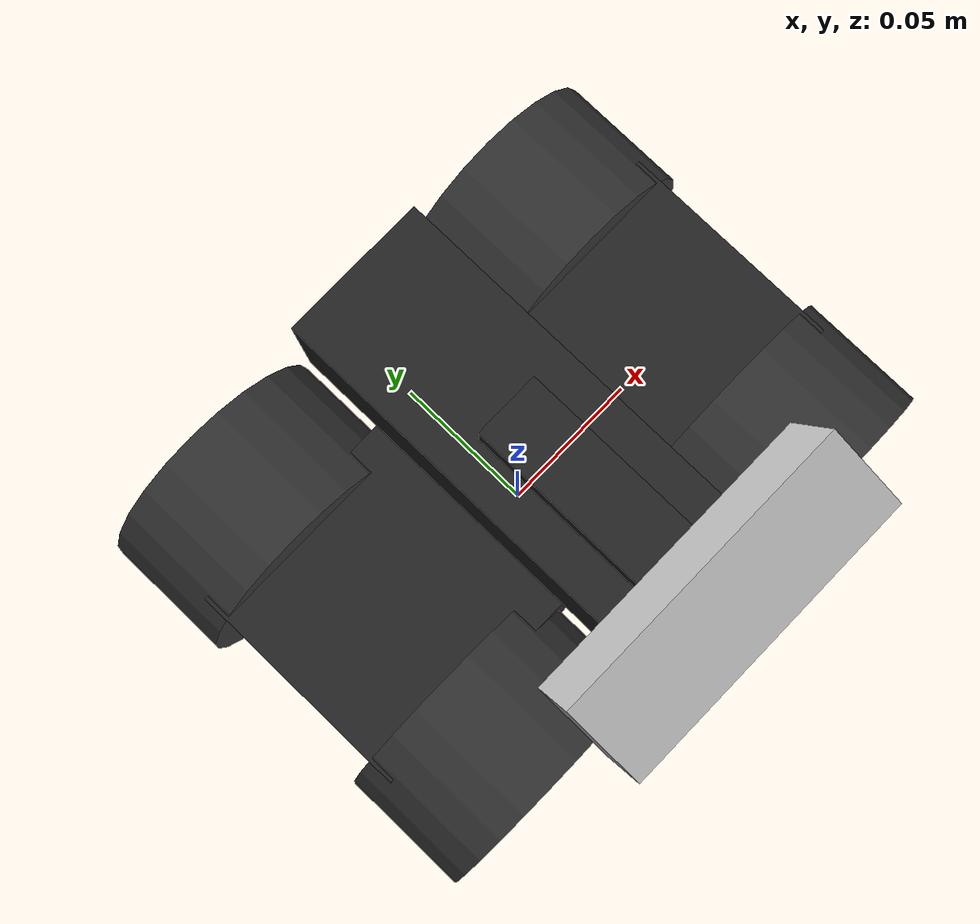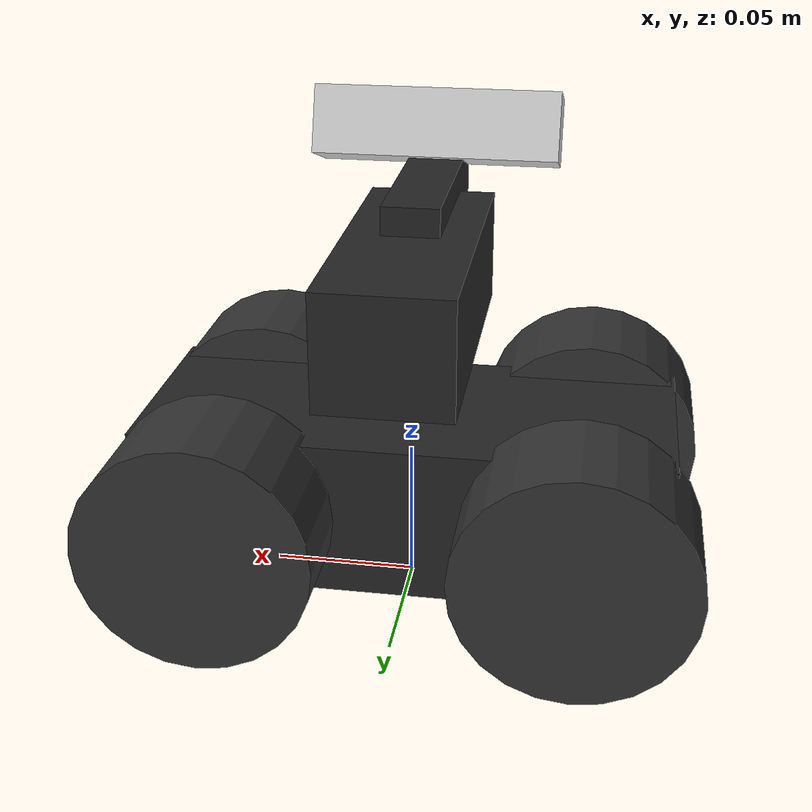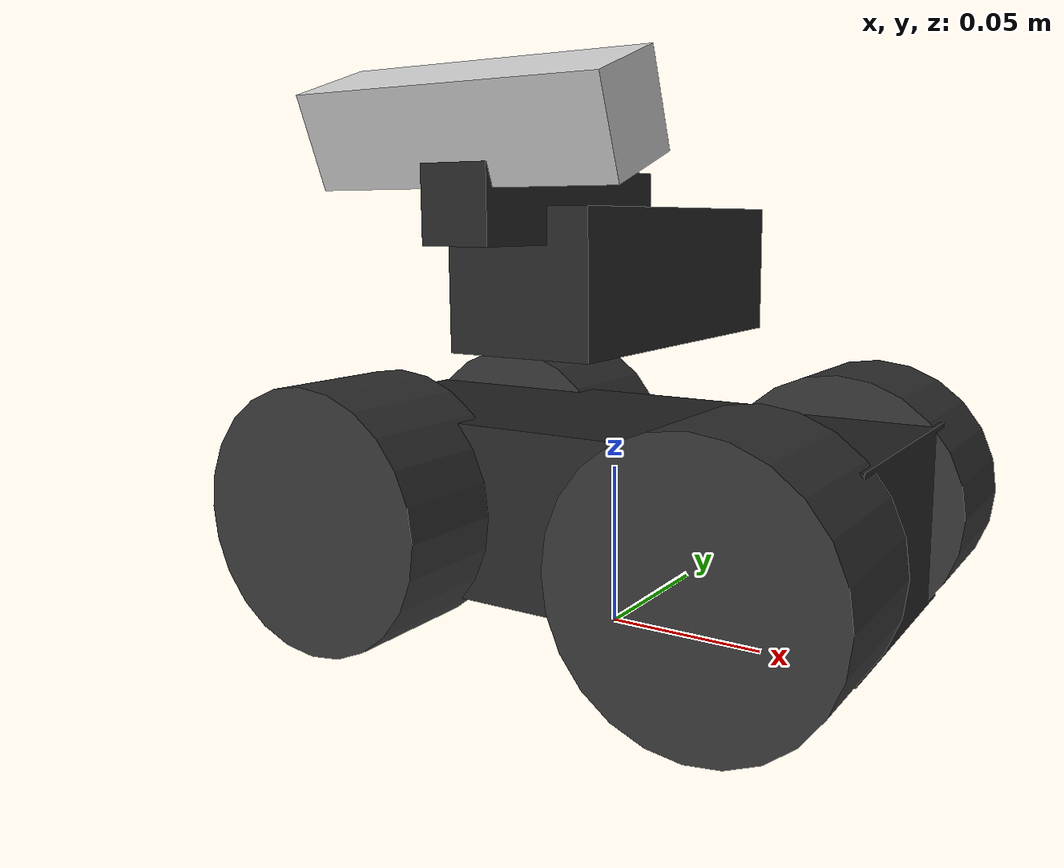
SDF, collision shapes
<?xml version="1.0"?>
<sdf version="1.7">
  <model name="wave_rover">
    <!-- Base Link -->
    <link name="base_link">
      <pose>0 0 0 0 0 0</pose>
      <inertial>
        <mass>5.0</mass>
        <inertia>
          <ixx>0.02</ixx>
          <ixy>0.0</ixy>
          <ixz>0.0</ixz>
          <iyy>0.02</iyy>
          <iyz>0.0</iyz>
          <izz>0.02</izz>
        </inertia>
      </inertial>
      <visual name="base_visual">
        <pose>0 0 0.06 0 0 0</pose>
        <geometry>
          <mesh>
            <uri>model://wave_rover_description/meshes/roverbody.stl</uri>
            <scale>0.001 0.001 0.001</scale>
          </mesh>
        </geometry>
        <material>
          <ambient>0.15 0.15 0.15 1.0</ambient>
          <diffuse>0.15 0.15 0.15 1.0</diffuse>
          <specular>0.1 0.1 0.1 1.0</specular>
        </material>
      </visual>
      <collision name="base_collision">
        <pose>0 0 0.04 0 0 0</pose>
        <geometry>
          <box>
            <size>0.1828 0.0753 0.0542</size>
          </box>
        </geometry>
        <surface>
          <friction>
            <ode>
              <mu>1</mu>
              <mu2>1</mu2>
            </ode>
          </friction>
          <contact>
            <ode>
              <soft_cfm>0</soft_cfm>
              <soft_erp>0.2</soft_erp>
              <kp>1e+13</kp>
              <kd>1</kd>
            </ode>
          </contact>
        </surface>
      </collision>
    </link>

    <!-- Bracket Stand Link -->
    <link name="bracket_stand_link">
      <pose relative_to="base_link">0.0 0.0042 0.11 0 0 0</pose>
      <inertial>
        <mass>0.1</mass>
        <inertia>
          <ixx>1e-5</ixx>
          <ixy>0.0</ixy>
          <ixz>0.0</ixz>
          <iyy>1e-5</iyy>
          <iyz>0.0</iyz>
          <izz>1e-5</izz>
        </inertia>
      </inertial>
      <visual name="bracket_stand_visual">
        <geometry>
          <box>
            <size>0.045 0.11 0.04</size>
          </box>
        </geometry>
        <material>
          <diffuse>0.15 0.15 0.15 1.0</diffuse>
          <specular>0.1 0.1 0.1 1.0</specular>
        </material>
      </visual>
      <collision name="bracket_stand_collision">
        <geometry>
          <box>
            <size>0.045 0.11 0.04</size>
          </box>
        </geometry>
      </collision>
    </link>

    <!-- Bracket Stand Joint -->
    <joint name="bracket_stand_mount" type="fixed">
      <parent>base_link</parent>
      <child>bracket_stand_link</child>
    </joint>

    <!-- Camera Bracket Link -->
    <link name="camera_bracket_link">
      <pose relative_to="bracket_stand_link">0.0 -0.04 0.02 0 0 0</pose>
      <inertial>
        <mass>0.05</mass>
        <inertia>
          <ixx>1e-6</ixx>
          <ixy>0.0</ixy>
          <ixz>0.0</ixz>
          <iyy>1e-6</iyy>
          <iyz>0.0</iyz>
          <izz>1e-6</izz>
        </inertia>
      </inertial>
      <visual name="camera_bracket_visual">
        <geometry>
          <mesh>
            <uri>model://wave_rover_description/meshes/realsense_bracket.stl</uri>
            <scale>0.001 0.001 0.001</scale>
          </mesh>
        </geometry>
        <material>
          <diffuse>0.15 0.15 0.15 1.0</diffuse>
          <specular>0.1 0.1 0.1 1.0</specular>
        </material>
      </visual>
      <collision name="camera_bracket_collision">
        <geometry>
          <box>
            <size>0.02 0.08 0.02</size>
          </box>
        </geometry>
      </collision>
    </link>

    <!-- Camera Bracket Joint -->
    <joint name="bracket_mount" type="fixed">
      <parent>bracket_stand_link</parent>
      <child>camera_bracket_link</child>
    </joint>

    <!-- Camera Link -->
    <link name="camera_link">
      <pose relative_to="camera_bracket_link">0.0 -0.03 0.02 0.349 0 0</pose>
      <inertial>
        <mass>0.0615752</mass>
        <inertia>
          <ixx>9.108e-05</ixx>
          <ixy>0</ixy>
          <ixz>0</ixz>
          <iyy>2.51e-06</iyy>
          <iyz>0</iyz>
          <izz>8.931e-05</izz>
        </inertia>
      </inertial>
      <collision name="camera_link_collision">
        <geometry>
          <box>
            <size>0.09 0.025 0.025</size>
          </box>
        </geometry>
      </collision>
      <visual name="camera_visual">
        <geometry>
          <mesh>
            <uri>model://wave_rover_description/models/intel_realsense_d435/meshes/realsense.dae</uri>
          </mesh>
        </geometry>
        <material>
          <diffuse>0.8 0.8 0.8 1.0</diffuse>
          <specular>0.2 0.2 0.2 1.0</specular>
        </material>
      </visual>

      <!-- Camera Sensor -->
      <sensor name="camera" type="camera">
        <update_rate>30</update_rate>
        <camera name="head">
          <horizontal_fov>1.0472</horizontal_fov>
          <image>
            <width>640</width>
            <height>480</height>
            <format>R8G8B8</format>
          </image>
          <clip>
            <near>0.02</near>
            <far>300</far>
          </clip>
          <noise>
            <type>gaussian</type>
            <mean>0.0</mean>
            <stddev>0.007</stddev>
          </noise>
        </camera>
        <plugin name="camera_controller" filename="libgazebo_ros_camera.so">
          <alwaysOn>true</alwaysOn>
          <updateRate>0.0</updateRate>
          <cameraName>wave_rover/camera</cameraName>
          <imageTopicName>image_raw</imageTopicName>
          <cameraInfoTopicName>camera_info</cameraInfoTopicName>
          <frameName>camera_link</frameName>
          <hackBaseline>0.07</hackBaseline>
          <distortionK1>0.0</distortionK1>
          <distortionK2>0.0</distortionK2>
          <distortionK3>0.0</distortionK3>
          <distortionT1>0.0</distortionT1>
          <distortionT2>0.0</distortionT2>
        </plugin>
      </sensor>
    </link>

    <!-- Camera Mount Joint -->
    <joint name="camera_mount" type="fixed">
      <parent>camera_bracket_link</parent>
      <child>camera_link</child>
    </joint>

    <!-- Front Left Wheel -->
    <link name="front_left_wheel">
      <pose>-0.061 -0.050 0.04 0 0 0</pose>
      <inertial>
        <mass>0.451</mass>
        <inertia>
          <ixx>0.000395</ixx>
          <ixy>0.0</ixy>
          <ixz>0.0</ixz>
          <iyy>0.000395</iyy>
          <iyz>0.0</iyz>
          <izz>0.000361</izz>
        </inertia>
      </inertial>
      <collision name="front_left_wheel_collision">
        <pose>0 0 0 1.5708 0 0</pose>
        <geometry>
          <cylinder>
            <length>0.042</length>
            <radius>0.04</radius>
          </cylinder>
        </geometry>
        <surface>
          <friction>
            <ode>
              <mu>1</mu>
              <mu2>1</mu2>
            </ode>
          </friction>
          <contact>
            <ode>
              <soft_cfm>0</soft_cfm>
              <soft_erp>0.2</soft_erp>
              <kp>1e+13</kp>
              <kd>1</kd>
            </ode>
          </contact>
        </surface>
      </collision>
      <visual name="front_left_wheel_visual">
        <pose>0 0 0 1.570795 0 0</pose>
        <geometry>
          <mesh>
            <uri>model://wave_rover_description/meshes/leftside_wheel.stl</uri>
            <scale>0.001 0.001 0.001</scale>
          </mesh>
        </geometry>
        <material>
          <diffuse>0.2 0.2 0.2 1.0</diffuse>
          <specular>0.1 0.1 0.1 1.0</specular>
        </material>
      </visual>
    </link>

    <!-- Front Left Wheel Joint -->
    <joint name="front_left_wheel_joint" type="revolute">
      <parent>base_link</parent>
      <child>front_left_wheel</child>
      <axis>
        <xyz>1 0 0</xyz>
        <dynamics>
          <damping>1.0</damping>
          <friction>1.0</friction>
        </dynamics>
        <limit>
          <lower>-1000</lower>
          <upper>1000</upper>
          <effort>10.0</effort>
          <velocity>10.0</velocity>
        </limit>
      </axis>
    </joint>

    <!-- Front Right Wheel -->
    <link name="front_right_wheel">
      <pose>0.061 -0.050 0.04 0 0 0</pose>
      <inertial>
        <mass>0.451</mass>
        <inertia>
          <ixx>0.000395</ixx>
          <ixy>0.0</ixy>
          <ixz>0.0</ixz>
          <iyy>0.000395</iyy>
          <iyz>0.0</iyz>
          <izz>0.000361</izz>
        </inertia>
      </inertial>
      <collision name="front_right_wheel_collision">
        <pose>0 0 0 1.5708 0 0</pose>
        <geometry>
          <cylinder>
            <length>0.042</length>
            <radius>0.04</radius>
          </cylinder>
        </geometry>
        <surface>
          <friction>
            <ode>
              <mu>1</mu>
              <mu2>1</mu2>
            </ode>
          </friction>
          <contact>
            <ode>
              <soft_cfm>0</soft_cfm>
              <soft_erp>0.2</soft_erp>
              <kp>1e+13</kp>
              <kd>1</kd>
            </ode>
          </contact>
        </surface>
      </collision>
      <visual name="front_right_wheel_visual">
        <pose>0 0 0 1.570795 0 0</pose>
        <geometry>
          <mesh>
            <uri>model://wave_rover_description/meshes/rightside_wheel.stl</uri>
            <scale>0.001 0.001 0.001</scale>
          </mesh>
        </geometry>
        <material>
          <diffuse>0.2 0.2 0.2 1.0</diffuse>
          <specular>0.1 0.1 0.1 1.0</specular>
        </material>
      </visual>
    </link>

    <!-- Front Right Wheel Joint -->
    <joint name="front_right_wheel_joint" type="revolute">
      <parent>base_link</parent>
      <child>front_right_wheel</child>
      <axis>
        <xyz>1 0 0</xyz>
        <dynamics>
          <damping>1.0</damping>
          <friction>1.0</friction>
        </dynamics>
        <limit>
          <lower>-1000</lower>
          <upper>1000</upper>
          <effort>10.0</effort>
          <velocity>10.0</velocity>
        </limit>
      </axis>
    </joint>

    <!-- Back Left Wheel -->
    <link name="back_left_wheel">
      <pose>-0.061 0.050 0.04 0 0 0</pose>
      <inertial>
        <mass>0.451</mass>
        <inertia>
          <ixx>0.000395</ixx>
          <ixy>0.0</ixy>
          <ixz>0.0</ixz>
          <iyy>0.000395</iyy>
          <iyz>0.0</iyz>
          <izz>0.000361</izz>
        </inertia>
      </inertial>
      <collision name="back_left_wheel_collision">
        <pose>0 0 0 1.5708 0 0</pose>
        <geometry>
          <cylinder>
            <length>0.042</length>
            <radius>0.04</radius>
          </cylinder>
        </geometry>
        <surface>
          <friction>
            <ode>
              <mu>1</mu>
              <mu2>1</mu2>
            </ode>
          </friction>
          <contact>
            <ode>
              <soft_cfm>0</soft_cfm>
              <soft_erp>0.2</soft_erp>
              <kp>1e+13</kp>
              <kd>1</kd>
            </ode>
          </contact>
        </surface>
      </collision>
      <visual name="back_left_wheel_visual">
        <pose>0 0 0 1.570795 0 0</pose>
        <geometry>
          <mesh>
            <uri>model://wave_rover_description/meshes/leftside_wheel.stl</uri>
            <scale>0.001 0.001 0.001</scale>
          </mesh>
        </geometry>
        <material>
          <diffuse>0.2 0.2 0.2 1.0</diffuse>
          <specular>0.1 0.1 0.1 1.0</specular>
        </material>
      </visual>
    </link>

    <!-- Back Left Wheel Joint -->
    <joint name="back_left_wheel_joint" type="revolute">
      <parent>base_link</parent>
      <child>back_left_wheel</child>
      <axis>
        <xyz>1 0 0</xyz>
        <dynamics>
          <damping>1.0</damping>
          <friction>1.0</friction>
        </dynamics>
        <limit>
          <lower>-1000</lower>
          <upper>1000</upper>
          <effort>10.0</effort>
          <velocity>10.0</velocity>
        </limit>
      </axis>
    </joint>

    <!-- Back Right Wheel -->
    <link name="back_right_wheel">
      <pose>0.061 0.050 0.04 0 0 0</pose>
      <inertial>
        <mass>0.451</mass>
        <inertia>
          <ixx>0.000395</ixx>
          <ixy>0.0</ixy>
          <ixz>0.0</ixz>
          <iyy>0.000395</iyy>
          <iyz>0.0</iyz>
          <izz>0.000361</izz>
        </inertia>
      </inertial>
      <collision name="back_right_wheel_collision">
        <pose>0 0 0 1.5708 0 0</pose>
        <geometry>
          <cylinder>
            <length>0.042</length>
            <radius>0.04</radius>
          </cylinder>
        </geometry>
        <surface>
          <friction>
            <ode>
              <mu>1</mu>
              <mu2>1</mu2>
            </ode>
          </friction>
          <contact>
            <ode>
              <soft_cfm>0</soft_cfm>
              <soft_erp>0.2</soft_erp>
              <kp>1e+13</kp>
              <kd>1</kd>
            </ode>
          </contact>
        </surface>
      </collision>
      <visual name="back_right_wheel_visual">
        <pose>0 0 0 1.570795 0 0</pose>
        <geometry>
          <mesh>
            <uri>model://wave_rover_description/meshes/rightside_wheel.stl</uri>
            <scale>0.001 0.001 0.001</scale>
          </mesh>
        </geometry>
        <material>
          <diffuse>0.2 0.2 0.2 1.0</diffuse>
          <specular>0.1 0.1 0.1 1.0</specular>
        </material>
      </visual>
    </link>

    <!-- Back Right Wheel Joint -->
    <joint name="back_right_wheel_joint" type="revolute">
      <parent>base_link</parent>
      <child>back_right_wheel</child>
      <axis>
        <xyz>1 0 0</xyz>
        <dynamics>
          <damping>1.0</damping>
          <friction>1.0</friction>
        </dynamics>
        <limit>
          <lower>-1000</lower>
          <upper>1000</upper>
          <effort>10.0</effort>
          <velocity>10.0</velocity>
        </limit>
      </axis>
    </joint>

    <!-- Differential Drive Plugin for Classic Gazebo -->
    <plugin name="differential_drive_controller" filename="libgazebo_ros_diff_drive.so">
      <alwaysOn>true</alwaysOn>
      <updateRate>100</updateRate>
      <leftJoint>front_left_wheel_joint</leftJoint>
      <rightJoint>front_right_wheel_joint</rightJoint>
      <wheelSeparation>0.1</wheelSeparation>
      <wheelDiameter>0.08</wheelDiameter>
      <torque>20</torque>
      <commandTopic>cmd_vel</commandTopic>
      <odometryTopic>odom</odometryTopic>
      <odometryFrame>odom</odometryFrame>
      <robotBaseFrame>base_link</robotBaseFrame>
      <publishWheelTF>true</publishWheelTF>
      <publishWheelJointState>true</publishWheelJointState>
      <wheelAcceleration>0</wheelAcceleration>
      <wheelTorque>5</wheelTorque>
      <rosDebugLevel>na</rosDebugLevel>
    </plugin>

  </model>
</sdf>
